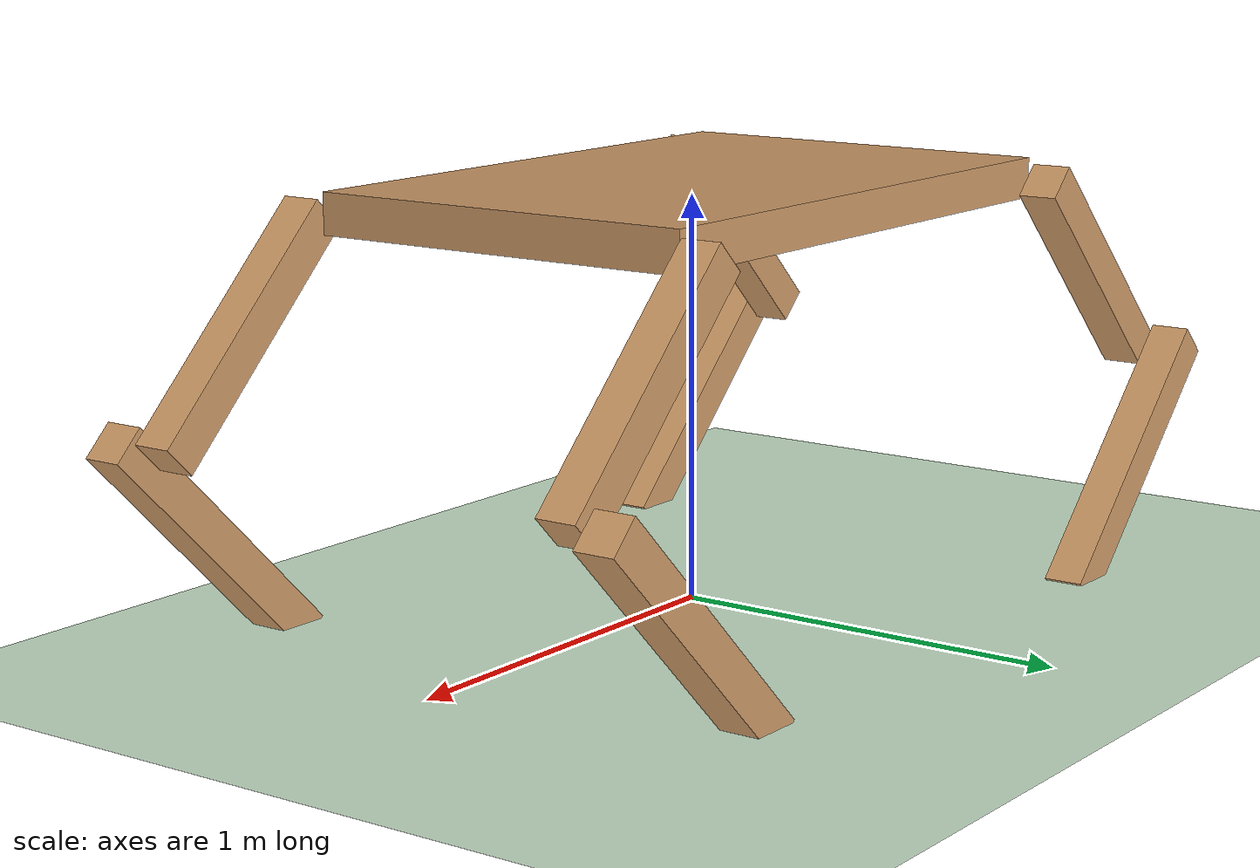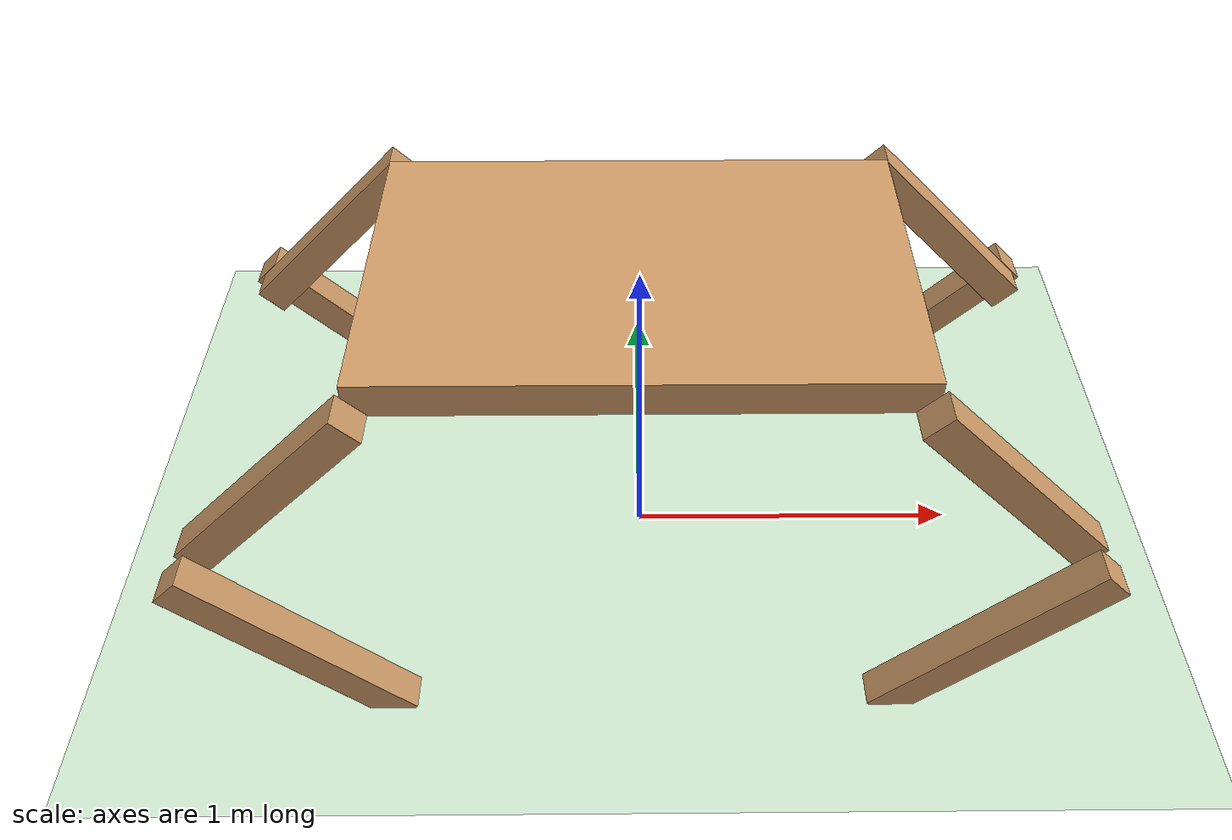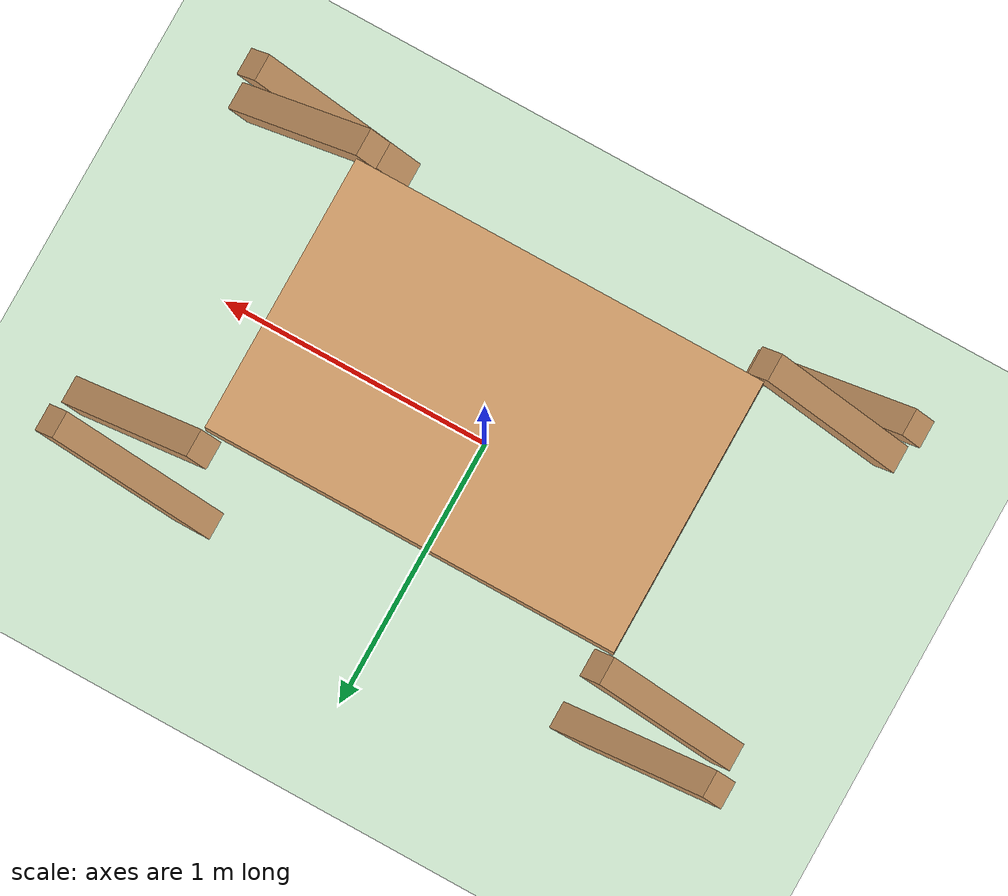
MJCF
<mujoco model="4leg">

  <asset>
      <texture builtin="gradient" height="100" rgb1="1 1 1" rgb2="0 0 0" type="skybox" width="100"/>
      <texture builtin="flat" height="1278" mark="cross" markrgb="1 1 1" name="texgeom" random="0.01" rgb1="0.8 0.6 0.2" rgb2="0.8 0.6 0.2" type="cube" width="127"/>
      <texture builtin="checker" height="100" name="texplane" rgb1="0 0 0" rgb2="0.8 0.8 0.8" type="2d" width="100"/>
      <material name="MatPlane" reflectance="0.5" shininess="1" specular="1" texrepeat="60 60" texture="texplane"/>
      <material name="geom" texture="texgeom" texuniform="true"/>
  </asset>

  <default>
      <joint armature="0.001" damping=".01" />
      <geom density="1.5" conaffinity="1" condim="3" contype="1" friction=".5 .5 .5" rgba="0.8 0.6 .4 1" solimp="0.9 0.95 0.001" solref="0.02 1"/>
  </default>
  <option gravity="0 0 -9.81" iterations="50" tolerance="1e-10" solver="Newton" jacobian="dense" cone="pyramidal" noslip_iterations="3" />
  <size nconmax="50" njmax="200" nstack="10000"/>
  <compiler angle="radian" coordinate="local" inertiafromgeom="true" />

  <worldbody>
    <light cutoff="100" diffuse="1 1 1" dir="-0 0 -1.3" directional="true" exponent="1" pos="0 0 1.3" specular=".1 .1 .1"/>
    <geom conaffinity="1" condim="3" material="MatPlane" name="floor" pos="0 0 0" rgba="0.8 0.9 0.8 1" size="40 40 10" type="plane"/>
    <!-- world body defult part -->

    <body name="spine" pos="0 0 1" >
    <camera name="track" mode="trackcom" pos="0 -3 0.3" xyaxes="1 0 0 0 0 1"/>
      <geom name ="spine" type="box" size="0.75 0.5 0.05"/>
      <joint name="pos_x"  pos="0 0 0" type="slide" axis="1 0 0"/>
      <joint name="pos_y"  pos="0 0 0" type="slide" axis="0 1 0"/>
      <joint name="pos_z"  pos="0 0 0" type="slide" axis="0 0 1"/>

      <joint name="rot"  pos="0 0 0" type="ball"/>

      <!-- -35 degree : -0.611 -->
      <!-- 125 degree : 2.182 -->
      <!-- 80 degree : 1.396 -->
      <body name="frontrightleg" pos="0.72 0.5 0">
        <joint  name="frontrightleg1"  pos="0 0.01 0"   range="-0.611 2.182" type="hinge" axis="0 1 0" limited = "true"/>
        <geom name="frontrightleg" pos="0.25 0.06 -.25" euler = "0 -0.78539 0" size="0.05 0.05 0.35" type="box"/>
        <body pos=".5 0.17 -.5">
          <joint name="frontrightleg2" pos="0 0 0"      range="-1.396 1.396" type="hinge" axis="0 1 0" limited = "true"/>
          <geom pos="-0.25 0.01 -.25" euler = "0 0.78539 0" size="0.05 0.05 .4" type="box"/>
        </body>
      </body>

      <body name="frontleftleg" pos="0.72 -0.5 0">
        <joint  name="frontleftleg1"  pos="0 -0.01 0"   range="-0.611 2.182" type="hinge" axis="0 1 0" limited = "true"/>
        <geom name="frontleftleg" pos="0.25 -0.06 -.25" euler = "0 -0.78539 0" size="0.05 0.05 0.35" type="box"/>
        <body pos=".5 -0.17 -.5">
          <joint name="frontleftleg2" pos="0 0 0"      range="-1.396 1.396" type="hinge" axis="0 1 0" limited = "true"/>
          <geom pos="-0.25 -0.01 -.25" euler = "0 0.78539 0" size="0.05 0.05 .4" type="box"/>
        </body>
      </body>

      <body name="backrightleg" pos="-0.72 0.5 0">
        <joint  name="backrightleg1"  pos="0 0.01 0"   range="-2.182 0.611" type="hinge" axis="0 1 0" limited = "true"/>
        <geom pos="-0.25 0.06 -.25" euler = "0 0.78539 0" size="0.05 0.05 0.35" type="box"/>
        <body pos="-.5 0.17 -.5">
          <joint name="backrightleg2" pos="0 0 0"      range="-1.396 1.396" type="hinge" axis="0 1 0" limited = "true"/>
          <geom pos="0.25 0.01 -.25" euler = "0 -0.78539 0" size="0.05 0.05 .4" type="box"/>
        </body>
      </body>

      <body name="backleftleg" pos="-0.72 -0.5 0">
        <joint  name="backleftleg1"  pos="0 -0.01 0"   range="-2.182 0.611" type="hinge" axis="0 1 0" limited = "true"/>
        <geom name="backleftleg" pos="-0.25 -0.06 -.25" euler = "0 0.78539 0" size="0.05 0.05 0.35" type="box"/>
        <body pos="-.5 -0.17 -.5">
          <joint name="backleftleg2" pos="0 0 0"      range="-1.396 1.396" type="hinge" axis="0 1 0" limited = "true"/>
          <geom pos="0.25 -0.01 -.25" euler = "0 -0.78539 0" size="0.05 0.05 .4" type="box"/>
        </body>
      </body>

    </body>

  </worldbody>

  <actuator>
      <motor joint="frontrightleg1"  ctrlrange ="-1.8 1.8" forcelimited="true" forcerange="-1.8 1.8"/>
      <motor joint="frontrightleg2"  ctrlrange ="-1.8 1.8" forcelimited="true" forcerange="-1.8 1.8"/>

      <motor joint="frontleftleg1"   ctrlrange ="-1.8 1.8" forcelimited="true" forcerange="-1.8 1.8"/>
      <motor joint="frontleftleg2"   ctrlrange ="-1.8 1.8" forcelimited="true" forcerange="-1.8 1.8"/>

      <motor joint="backrightleg1"   ctrlrange ="-1.8 1.8" forcelimited="true" forcerange="-1.8 1.8"/>
      <motor joint="backrightleg2"   ctrlrange ="-1.8 1.8" forcelimited="true" forcerange="-1.8 1.8"/>

      <motor joint="backleftleg1"    ctrlrange ="-1.8 1.8" forcelimited="true" forcerange="-1.8 1.8"/>
      <motor joint="backleftleg2"    ctrlrange ="-1.8 1.8" forcelimited="true" forcerange="-1.8 1.8"/>

  </actuator>

</mujoco>
